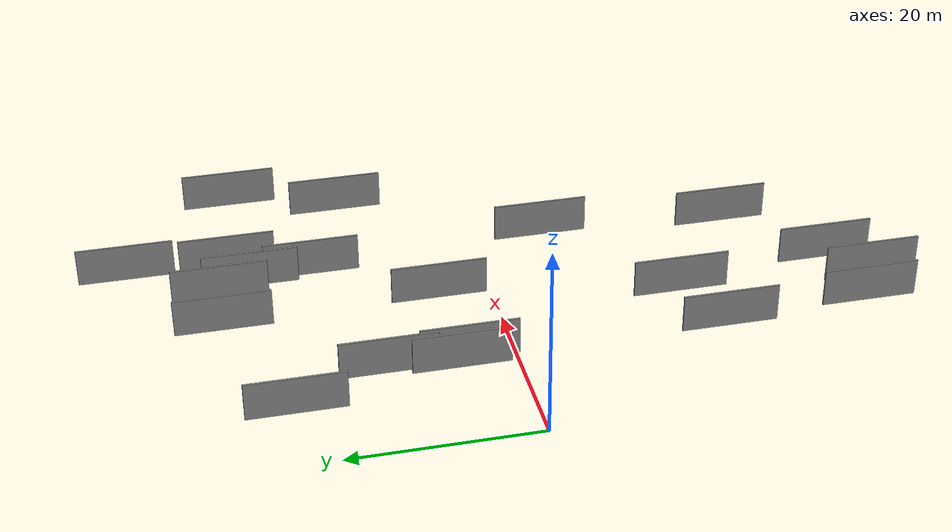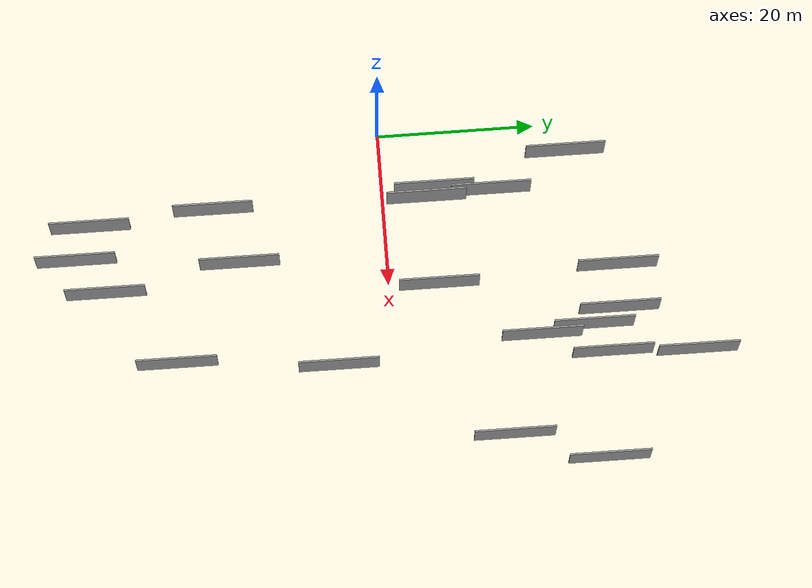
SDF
<sdf version="1.6">
 <world name="default">
  <scene>
   <sky><clouds><speed>12</speed></clouds></sky>
   <ambient>0.4 0.4 0.4 1</ambient>
   <background>0.7 0.7 0.7 1</background>
   <shadows>1</shadows>
  </scene>
  <gravity>0 0 -9.8066</gravity>
  <magnetic_field>6e-06 2.3e-05 -4.2e-05</magnetic_field>
  <physics default="0" name="default_physics" type="ode">
   <ode>
    <solver>
     <type>quick</type>
     <iters>10</iters>
     <sor>1.0</sor>
     <use_dynamic_moi_rescaling>0</use_dynamic_moi_rescaling>
    </solver>
    <constraints>
     <cfm>0</cfm>
     <erp>0.2</erp>
     <contact_max_correcting_vel>100</contact_max_correcting_vel>
     <contact_surface_layer>0.001</contact_surface_layer>
    </constraints>
   </ode>
   <max_step_size>0.004</max_step_size>
   <real_time_factor>1</real_time_factor>
   <real_time_update_rate>250</real_time_update_rate>
  </physics>
  <light name="sun" type="directional">
   <pose>0 0 10 0 0 0</pose>
   <diffuse>0.8 0.8 0.8 1</diffuse>
   <specular>0.2 0.2 0.2 1</specular>
   <attenuation>
    <range>1000</range>
    <constant>0.9</constant>
    <linear>0.01</linear>
    <quadratic>0.001</quadratic>
   </attenuation>
   <direction>-0.5 0.1 -0.9</direction>
  </light>
  <model name="grey_wall_1">
   <static>1</static>
   <pose>9.8910 -21.3462 2.5 0.000000 0.000000 1.570796</pose>
   <link name="link">
    <pose>0 0 2.00 0 0 0</pose>
    <collision name="collision"><geometry><box><size>10.00 0.2 4.00</size></box></geometry></collision>
    <visual name="visual">
     <cast_shadows>0</cast_shadows>
     <geometry><box><size>10.00 0.2 4.00</size></box></geometry>
     <material>
      <script>
       <uri>model://grey_wall/materials/scripts</uri>
       <uri>model://grey_wall/materials/textures</uri>
       <name>vrc/grey_wall</name>
      </script>
     </material>
    </visual>
   </link>
  </model>
  <model name="grey_wall_2">
   <static>1</static>
   <pose>10.0449 5.4870 2.5 0.000000 0.000000 1.570796</pose>
   <link name="link">
    <pose>0 0 2.00 0 0 0</pose>
    <collision name="collision"><geometry><box><size>10.00 0.2 4.00</size></box></geometry></collision>
    <visual name="visual">
     <cast_shadows>0</cast_shadows>
     <geometry><box><size>10.00 0.2 4.00</size></box></geometry>
     <material>
      <script>
       <uri>model://grey_wall/materials/scripts</uri>
       <uri>model://grey_wall/materials/textures</uri>
       <name>vrc/grey_wall</name>
      </script>
     </material>
    </visual>
   </link>
  </model>
  <model name="grey_wall_3">
   <static>1</static>
   <pose>9.5727 13.6501 2.5 0.000000 0.000000 1.570796</pose>
   <link name="link">
    <pose>0 0 2.00 0 0 0</pose>
    <collision name="collision"><geometry><box><size>10.00 0.2 4.00</size></box></geometry></collision>
    <visual name="visual">
     <cast_shadows>0</cast_shadows>
     <geometry><box><size>10.00 0.2 4.00</size></box></geometry>
     <material>
      <script>
       <uri>model://grey_wall/materials/scripts</uri>
       <uri>model://grey_wall/materials/textures</uri>
       <name>vrc/grey_wall</name>
      </script>
     </material>
    </visual>
   </link>
  </model>
  <model name="grey_wall_4">
   <static>1</static>
   <pose>41.5551 13.9879 2.5 0.000000 0.000000 1.570796</pose>
   <link name="link">
    <pose>0 0 2.00 0 0 0</pose>
    <collision name="collision"><geometry><box><size>10.00 0.2 4.00</size></box></geometry></collision>
    <visual name="visual">
     <cast_shadows>0</cast_shadows>
     <geometry><box><size>10.00 0.2 4.00</size></box></geometry>
     <material>
      <script>
       <uri>model://grey_wall/materials/scripts</uri>
       <uri>model://grey_wall/materials/textures</uri>
       <name>vrc/grey_wall</name>
      </script>
     </material>
    </visual>
   </link>
  </model>
  <model name="grey_wall_5">
   <static>1</static>
   <pose>31.2918 -6.8755 2.5 0.000000 0.000000 1.570796</pose>
   <link name="link">
    <pose>0 0 2.00 0 0 0</pose>
    <collision name="collision"><geometry><box><size>10.00 0.2 4.00</size></box></geometry></collision>
    <visual name="visual">
     <cast_shadows>0</cast_shadows>
     <geometry><box><size>10.00 0.2 4.00</size></box></geometry>
     <material>
      <script>
       <uri>model://grey_wall/materials/scripts</uri>
       <uri>model://grey_wall/materials/textures</uri>
       <name>vrc/grey_wall</name>
      </script>
     </material>
    </visual>
   </link>
  </model>
  <model name="grey_wall_6">
   <static>1</static>
   <pose>28.1778 24.9407 2.5 0.000000 0.000000 1.570796</pose>
   <link name="link">
    <pose>0 0 2.00 0 0 0</pose>
    <collision name="collision"><geometry><box><size>10.00 0.2 4.00</size></box></geometry></collision>
    <visual name="visual">
     <cast_shadows>0</cast_shadows>
     <geometry><box><size>10.00 0.2 4.00</size></box></geometry>
     <material>
      <script>
       <uri>model://grey_wall/materials/scripts</uri>
       <uri>model://grey_wall/materials/textures</uri>
       <name>vrc/grey_wall</name>
      </script>
     </material>
    </visual>
   </link>
  </model>
  <model name="grey_wall_7">
   <static>1</static>
   <pose>32.3200 37.4762 2.5 0.000000 0.000000 1.570796</pose>
   <link name="link">
    <pose>0 0 2.00 0 0 0</pose>
    <collision name="collision"><geometry><box><size>10.00 0.2 4.00</size></box></geometry></collision>
    <visual name="visual">
     <cast_shadows>0</cast_shadows>
     <geometry><box><size>10.00 0.2 4.00</size></box></geometry>
     <material>
      <script>
       <uri>model://grey_wall/materials/scripts</uri>
       <uri>model://grey_wall/materials/textures</uri>
       <name>vrc/grey_wall</name>
      </script>
     </material>
    </visual>
   </link>
  </model>
  <model name="grey_wall_8">
   <static>1</static>
   <pose>15.4733 -38.7401 2.5 0.000000 0.000000 1.570796</pose>
   <link name="link">
    <pose>0 0 2.00 0 0 0</pose>
    <collision name="collision"><geometry><box><size>10.00 0.2 4.00</size></box></geometry></collision>
    <visual name="visual">
     <cast_shadows>0</cast_shadows>
     <geometry><box><size>10.00 0.2 4.00</size></box></geometry>
     <material>
      <script>
       <uri>model://grey_wall/materials/scripts</uri>
       <uri>model://grey_wall/materials/textures</uri>
       <name>vrc/grey_wall</name>
      </script>
     </material>
    </visual>
   </link>
  </model>
  <model name="grey_wall_9">
   <static>1</static>
   <pose>20.6354 28.5776 2.5 0.000000 0.000000 1.570796</pose>
   <link name="link">
    <pose>0 0 2.00 0 0 0</pose>
    <collision name="collision"><geometry><box><size>10.00 0.2 4.00</size></box></geometry></collision>
    <visual name="visual">
     <cast_shadows>0</cast_shadows>
     <geometry><box><size>10.00 0.2 4.00</size></box></geometry>
     <material>
      <script>
       <uri>model://grey_wall/materials/scripts</uri>
       <uri>model://grey_wall/materials/textures</uri>
       <name>vrc/grey_wall</name>
      </script>
     </material>
    </visual>
   </link>
  </model>
  <model name="grey_wall_10">
   <static>1</static>
   <pose>45.2615 25.2938 2.5 0.000000 0.000000 1.570796</pose>
   <link name="link">
    <pose>0 0 2.00 0 0 0</pose>
    <collision name="collision"><geometry><box><size>10.00 0.2 4.00</size></box></geometry></collision>
    <visual name="visual">
     <cast_shadows>0</cast_shadows>
     <geometry><box><size>10.00 0.2 4.00</size></box></geometry>
     <material>
      <script>
       <uri>model://grey_wall/materials/scripts</uri>
       <uri>model://grey_wall/materials/textures</uri>
       <name>vrc/grey_wall</name>
      </script>
     </material>
    </visual>
   </link>
  </model>
  <model name="grey_wall_11">
   <static>1</static>
   <pose>11.1461 -36.8215 2.5 0.000000 0.000000 1.570796</pose>
   <link name="link">
    <pose>0 0 2.00 0 0 0</pose>
    <collision name="collision"><geometry><box><size>10.00 0.2 4.00</size></box></geometry></collision>
    <visual name="visual">
     <cast_shadows>0</cast_shadows>
     <geometry><box><size>10.00 0.2 4.00</size></box></geometry>
     <material>
      <script>
       <uri>model://grey_wall/materials/scripts</uri>
       <uri>model://grey_wall/materials/textures</uri>
       <name>vrc/grey_wall</name>
      </script>
     </material>
    </visual>
   </link>
  </model>
  <model name="grey_wall_12">
   <static>1</static>
   <pose>29.0543 18.4433 2.5 0.000000 0.000000 1.570796</pose>
   <link name="link">
    <pose>0 0 2.00 0 0 0</pose>
    <collision name="collision"><geometry><box><size>10.00 0.2 4.00</size></box></geometry></collision>
    <visual name="visual">
     <cast_shadows>0</cast_shadows>
     <geometry><box><size>10.00 0.2 4.00</size></box></geometry>
     <material>
      <script>
       <uri>model://grey_wall/materials/scripts</uri>
       <uri>model://grey_wall/materials/textures</uri>
       <name>vrc/grey_wall</name>
      </script>
     </material>
    </visual>
   </link>
  </model>
  <model name="grey_wall_13">
   <static>1</static>
   <pose>5.0737 23.3779 2.5 0.000000 0.000000 1.570796</pose>
   <link name="link">
    <pose>0 0 2.00 0 0 0</pose>
    <collision name="collision"><geometry><box><size>10.00 0.2 4.00</size></box></geometry></collision>
    <visual name="visual">
     <cast_shadows>0</cast_shadows>
     <geometry><box><size>10.00 0.2 4.00</size></box></geometry>
     <material>
      <script>
       <uri>model://grey_wall/materials/scripts</uri>
       <uri>model://grey_wall/materials/textures</uri>
       <name>vrc/grey_wall</name>
      </script>
     </material>
    </visual>
   </link>
  </model>
  <model name="grey_wall_14">
   <static>1</static>
   <pose>19.9971 -35.2172 2.5 0.000000 0.000000 1.570796</pose>
   <link name="link">
    <pose>0 0 2.00 0 0 0</pose>
    <collision name="collision"><geometry><box><size>10.00 0.2 4.00</size></box></geometry></collision>
    <visual name="visual">
     <cast_shadows>0</cast_shadows>
     <geometry><box><size>10.00 0.2 4.00</size></box></geometry>
     <material>
      <script>
       <uri>model://grey_wall/materials/scripts</uri>
       <uri>model://grey_wall/materials/textures</uri>
       <name>vrc/grey_wall</name>
      </script>
     </material>
    </visual>
   </link>
  </model>
  <model name="grey_wall_15">
   <static>1</static>
   <pose>29.6917 -26.7847 2.5 0.000000 0.000000 1.570796</pose>
   <link name="link">
    <pose>0 0 2.00 0 0 0</pose>
    <collision name="collision"><geometry><box><size>10.00 0.2 4.00</size></box></geometry></collision>
    <visual name="visual">
     <cast_shadows>0</cast_shadows>
     <geometry><box><size>10.00 0.2 4.00</size></box></geometry>
     <material>
      <script>
       <uri>model://grey_wall/materials/scripts</uri>
       <uri>model://grey_wall/materials/textures</uri>
       <name>vrc/grey_wall</name>
      </script>
     </material>
    </visual>
   </link>
  </model>
  <model name="grey_wall_16">
   <static>1</static>
   <pose>17.1610 -18.4045 2.5 0.000000 0.000000 1.570796</pose>
   <link name="link">
    <pose>0 0 2.00 0 0 0</pose>
    <collision name="collision"><geometry><box><size>10.00 0.2 4.00</size></box></geometry></collision>
    <visual name="visual">
     <cast_shadows>0</cast_shadows>
     <geometry><box><size>10.00 0.2 4.00</size></box></geometry>
     <material>
      <script>
       <uri>model://grey_wall/materials/scripts</uri>
       <uri>model://grey_wall/materials/textures</uri>
       <name>vrc/grey_wall</name>
      </script>
     </material>
    </visual>
   </link>
  </model>
  <model name="grey_wall_17">
   <static>1</static>
   <pose>26.2667 28.2981 2.5 0.000000 0.000000 1.570796</pose>
   <link name="link">
    <pose>0 0 2.00 0 0 0</pose>
    <collision name="collision"><geometry><box><size>10.00 0.2 4.00</size></box></geometry></collision>
    <visual name="visual">
     <cast_shadows>0</cast_shadows>
     <geometry><box><size>10.00 0.2 4.00</size></box></geometry>
     <material>
      <script>
       <uri>model://grey_wall/materials/scripts</uri>
       <uri>model://grey_wall/materials/textures</uri>
       <name>vrc/grey_wall</name>
      </script>
     </material>
    </visual>
   </link>
  </model>
  <model name="grey_wall_18">
   <static>1</static>
   <pose>21.5850 6.2415 2.5 0.000000 0.000000 1.570796</pose>
   <link name="link">
    <pose>0 0 2.00 0 0 0</pose>
    <collision name="collision"><geometry><box><size>10.00 0.2 4.00</size></box></geometry></collision>
    <visual name="visual">
     <cast_shadows>0</cast_shadows>
     <geometry><box><size>10.00 0.2 4.00</size></box></geometry>
     <material>
      <script>
       <uri>model://grey_wall/materials/scripts</uri>
       <uri>model://grey_wall/materials/textures</uri>
       <name>vrc/grey_wall</name>
      </script>
     </material>
    </visual>
   </link>
  </model>
  <model name="grey_wall_19">
   <static>1</static>
   <pose>8.8685 6.5234 2.5 0.000000 0.000000 1.570796</pose>
   <link name="link">
    <pose>0 0 2.00 0 0 0</pose>
    <collision name="collision"><geometry><box><size>10.00 0.2 4.00</size></box></geometry></collision>
    <visual name="visual">
     <cast_shadows>0</cast_shadows>
     <geometry><box><size>10.00 0.2 4.00</size></box></geometry>
     <material>
      <script>
       <uri>model://grey_wall/materials/scripts</uri>
       <uri>model://grey_wall/materials/textures</uri>
       <name>vrc/grey_wall</name>
      </script>
     </material>
    </visual>
   </link>
  </model>
  <model name="grey_wall_20">
   <static>1</static>
   <pose>31.8618 26.9551 2.5 0.000000 0.000000 1.570796</pose>
   <link name="link">
    <pose>0 0 2.00 0 0 0</pose>
    <collision name="collision"><geometry><box><size>10.00 0.2 4.00</size></box></geometry></collision>
    <visual name="visual">
     <cast_shadows>0</cast_shadows>
     <geometry><box><size>10.00 0.2 4.00</size></box></geometry>
     <material>
      <script>
       <uri>model://grey_wall/materials/scripts</uri>
       <uri>model://grey_wall/materials/textures</uri>
       <name>vrc/grey_wall</name>
      </script>
     </material>
    </visual>
   </link>
  </model>
 </world>
</sdf>
